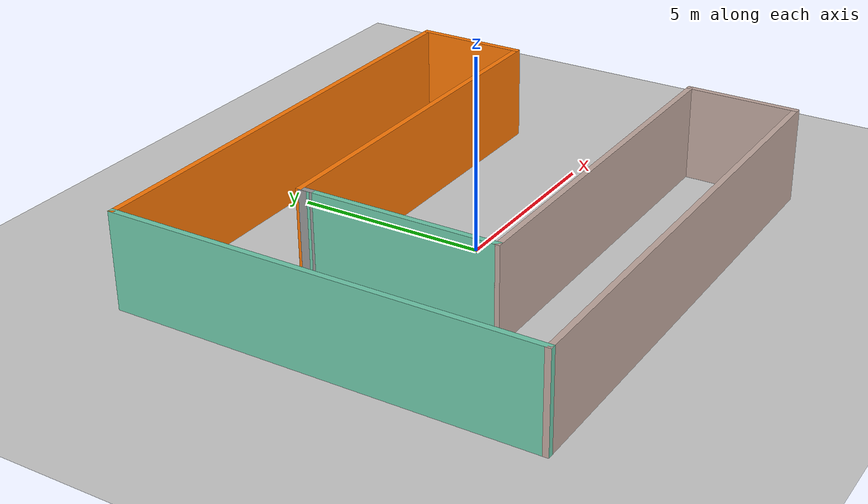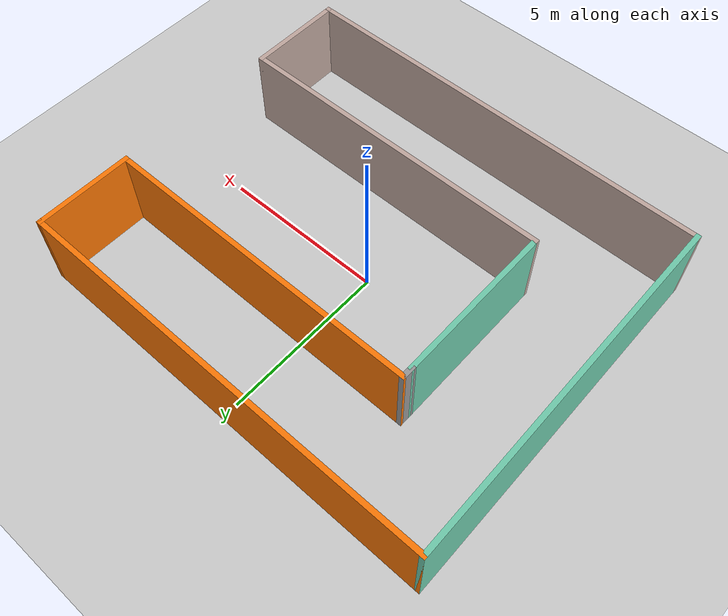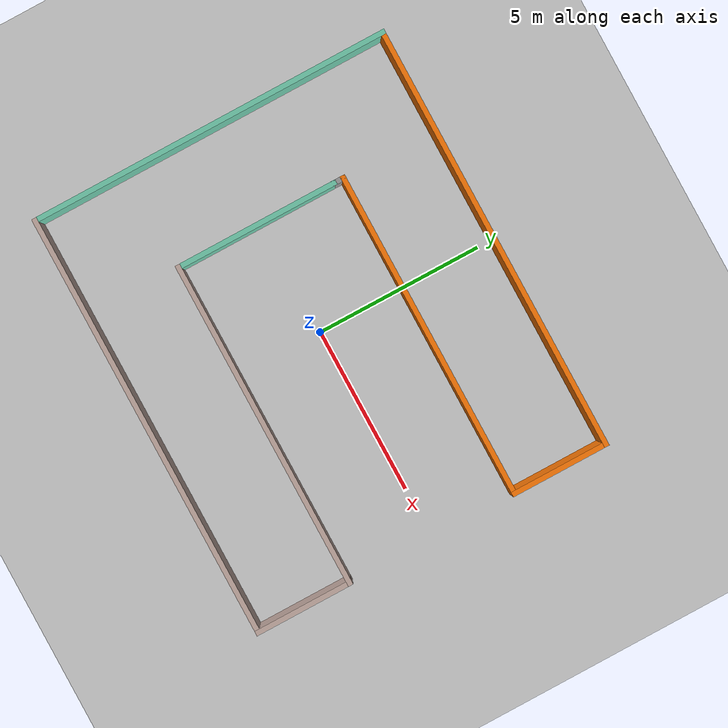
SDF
<sdf version="1.7">
 <world name="amr_world">
  <include><uri>model://sun</uri></include>
  <include><uri>model://ground_plane</uri></include>
  <include><uri>model://amr_world</uri></include>
 </world>
</sdf>

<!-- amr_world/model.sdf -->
<sdf version='1.7'>
  <model name='amr_world'>
    <pose>0 0 0 0 -0 0</pose>
    <link name='Wall_11'>
      <collision name='Wall_11_Collision'>
        <geometry>
          <box>
            <size>10 0.15 2.5</size>
          </box>
        </geometry>
        <pose>0 0 1.25 0 -0 0</pose>
      </collision>
      <visual name='Wall_11_Visual'>
        <pose>0 0 1.25 0 -0 0</pose>
        <geometry>
          <box>
            <size>10 0.15 2.5</size>
          </box>
        </geometry>
        <material>
          <script>
            <uri>file://media/materials/scripts/gazebo.material</uri>
            <name>Gazebo/Grey</name>
          </script>
          <ambient>0.760784 0.662745 0.627451 1</ambient>
        </material>
        <meta>
          <layer>0</layer>
        </meta>
      </visual>
      <pose>1.5 -2.575 0 0 -0 0</pose>
    </link>
    <link name='Wall_12'>
      <collision name='Wall_12_Collision'>
        <geometry>
          <box>
            <size>3 0.15 2.5</size>
          </box>
        </geometry>
        <pose>0 0 1.25 0 -0 0</pose>
      </collision>
      <visual name='Wall_12_Visual'>
        <pose>0 0 1.25 0 -0 0</pose>
        <geometry>
          <box>
            <size>3 0.15 2.5</size>
          </box>
        </geometry>
        <material>
          <script>
            <uri>file://media/materials/scripts/gazebo.material</uri>
            <name>Gazebo/Grey</name>
          </script>
          <ambient>0.760784 0.662745 0.627451 1</ambient>
        </material>
        <meta>
          <layer>0</layer>
        </meta>
      </visual>
      <pose>6.425 -4 0 0 -0 -1.5708</pose>
    </link>
    <link name='Wall_14'>
      <collision name='Wall_14_Collision'>
        <geometry>
          <box>
            <size>13 0.15 2.5</size>
          </box>
        </geometry>
        <pose>0 0 1.25 0 -0 0</pose>
      </collision>
      <visual name='Wall_14_Visual'>
        <pose>0 0 1.25 0 -0 0</pose>
        <geometry>
          <box>
            <size>13 0.15 2.5</size>
          </box>
        </geometry>
        <material>
          <script>
            <uri>file://media/materials/scripts/gazebo.material</uri>
            <name>Gazebo/Grey</name>
          </script>
          <ambient>0.760784 0.662745 0.627451 1</ambient>
        </material>
        <meta>
          <layer>0</layer>
        </meta>
      </visual>
      <pose>0 -5.425 0 0 -0 3.14159</pose>
    </link>
    <link name='Wall_15'>
      <collision name='Wall_15_Collision'>
        <geometry>
          <box>
            <size>11 0.15 2.5</size>
          </box>
        </geometry>
        <pose>0 0 1.25 0 -0 0</pose>
      </collision>
      <visual name='Wall_15_Visual'>
        <pose>0 0 1.25 0 -0 0</pose>
        <geometry>
          <box>
            <size>11 0.15 2.5</size>
          </box>
        </geometry>
        <material>
          <script>
            <uri>file://media/materials/scripts/gazebo.material</uri>
            <name>Gazebo/Grey</name>
          </script>
          <ambient>0.435294 0.796078 0.67451 1</ambient>
        </material>
        <meta>
          <layer>0</layer>
        </meta>
      </visual>
      <pose>-6.425 -0 0 0 -0 1.5708</pose>
    </link>
    <link name='Wall_16'>
      <collision name='Wall_16_Collision'>
        <geometry>
          <box>
            <size>13 0.15 2.5</size>
          </box>
        </geometry>
        <pose>0 0 1.25 0 -0 0</pose>
      </collision>
      <visual name='Wall_16_Visual'>
        <pose>0 0 1.25 0 -0 0</pose>
        <geometry>
          <box>
            <size>13 0.15 2.5</size>
          </box>
        </geometry>
        <material>
          <script>
            <uri>file://media/materials/scripts/gazebo.material</uri>
            <name>Gazebo/Grey</name>
          </script>
          <ambient>0.996078 0.47451 0.0196078 1</ambient>
        </material>
        <meta>
          <layer>0</layer>
        </meta>
      </visual>
      <pose>0 5.425 0 0 -0 0</pose>
    </link>
    <link name='Wall_17'>
      <collision name='Wall_17_Collision'>
        <geometry>
          <box>
            <size>3 0.15 2.5</size>
          </box>
        </geometry>
        <pose>0 0 1.25 0 -0 0</pose>
      </collision>
      <visual name='Wall_17_Visual'>
        <pose>0 0 1.25 0 -0 0</pose>
        <geometry>
          <box>
            <size>3 0.15 2.5</size>
          </box>
        </geometry>
        <material>
          <script>
            <uri>file://media/materials/scripts/gazebo.material</uri>
            <name>Gazebo/Grey</name>
          </script>
          <ambient>0.996078 0.47451 0.0196078 1</ambient>
        </material>
        <meta>
          <layer>0</layer>
        </meta>
      </visual>
      <pose>6.425 4 0 0 -0 -1.5708</pose>
    </link>
    <link name='Wall_18'>
      <collision name='Wall_18_Collision'>
        <geometry>
          <box>
            <size>10 0.15 2.5</size>
          </box>
        </geometry>
        <pose>0 0 1.25 0 -0 0</pose>
      </collision>
      <visual name='Wall_18_Visual'>
        <pose>0 0 1.25 0 -0 0</pose>
        <geometry>
          <box>
            <size>10 0.15 2.5</size>
          </box>
        </geometry>
        <material>
          <script>
            <uri>file://media/materials/scripts/gazebo.material</uri>
            <name>Gazebo/Grey</name>
          </script>
          <ambient>0.996078 0.47451 0.0196078 1</ambient>
        </material>
        <meta>
          <layer>0</layer>
        </meta>
      </visual>
      <pose>1.5 2.575 0 0 -0 3.14159</pose>
    </link>
    <link name='Wall_19'>
      <collision name='Wall_19_Collision'>
        <geometry>
          <box>
            <size>0.45 0.15 2.5</size>
          </box>
        </geometry>
        <pose>0 0 1.25 0 -0 0</pose>
      </collision>
      <visual name='Wall_19_Visual'>
        <pose>0 0 1.25 0 -0 0</pose>
        <geometry>
          <box>
            <size>0.45 0.15 2.5</size>
          </box>
        </geometry>
        <material>
          <script>
            <uri>file://media/materials/scripts/gazebo.material</uri>
            <name>Gazebo/Grey</name>
          </script>
          <ambient>1 1 1 1</ambient>
        </material>
        <meta>
          <layer>0</layer>
        </meta>
      </visual>
      <pose>-3.42523 2.42513 0 0 -0 -1.57233</pose>
    </link>
    <link name='Wall_6'>
      <collision name='Wall_6_Collision'>
        <geometry>
          <box>
            <size>5 0.15 2.5</size>
          </box>
        </geometry>
        <pose>0 0 1.25 0 -0 0</pose>
      </collision>
      <visual name='Wall_6_Visual'>
        <pose>0 0 1.25 0 -0 0</pose>
        <geometry>
          <box>
            <size>5 0.15 2.5</size>
          </box>
        </geometry>
        <material>
          <script>
            <uri>file://media/materials/scripts/gazebo.material</uri>
            <name>Gazebo/Grey</name>
          </script>
          <ambient>0.435294 0.796078 0.67451 1</ambient>
        </material>
        <meta>
          <layer>0</layer>
        </meta>
      </visual>
      <pose>-3.42523 -0.149874 0 0 -0 -1.5707</pose>
    </link>
    <static>1</static>
  </model>
</sdf>
